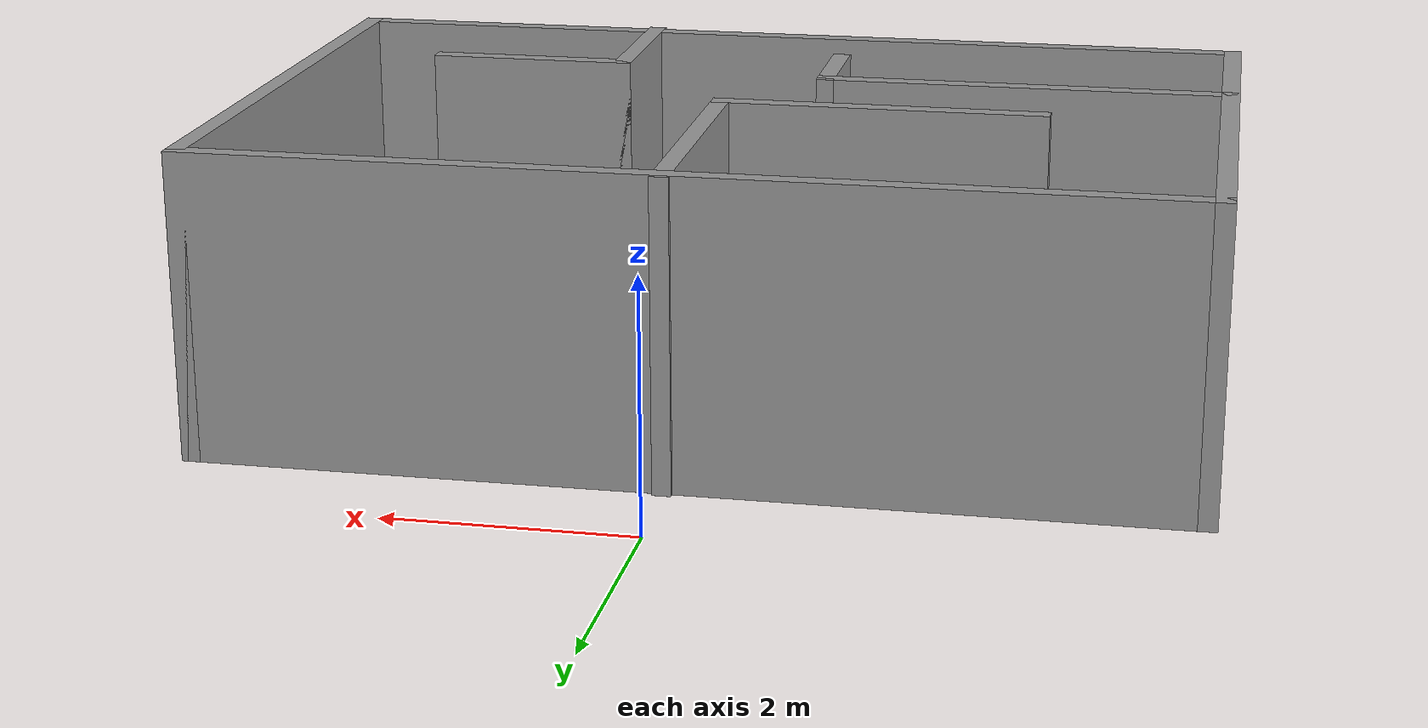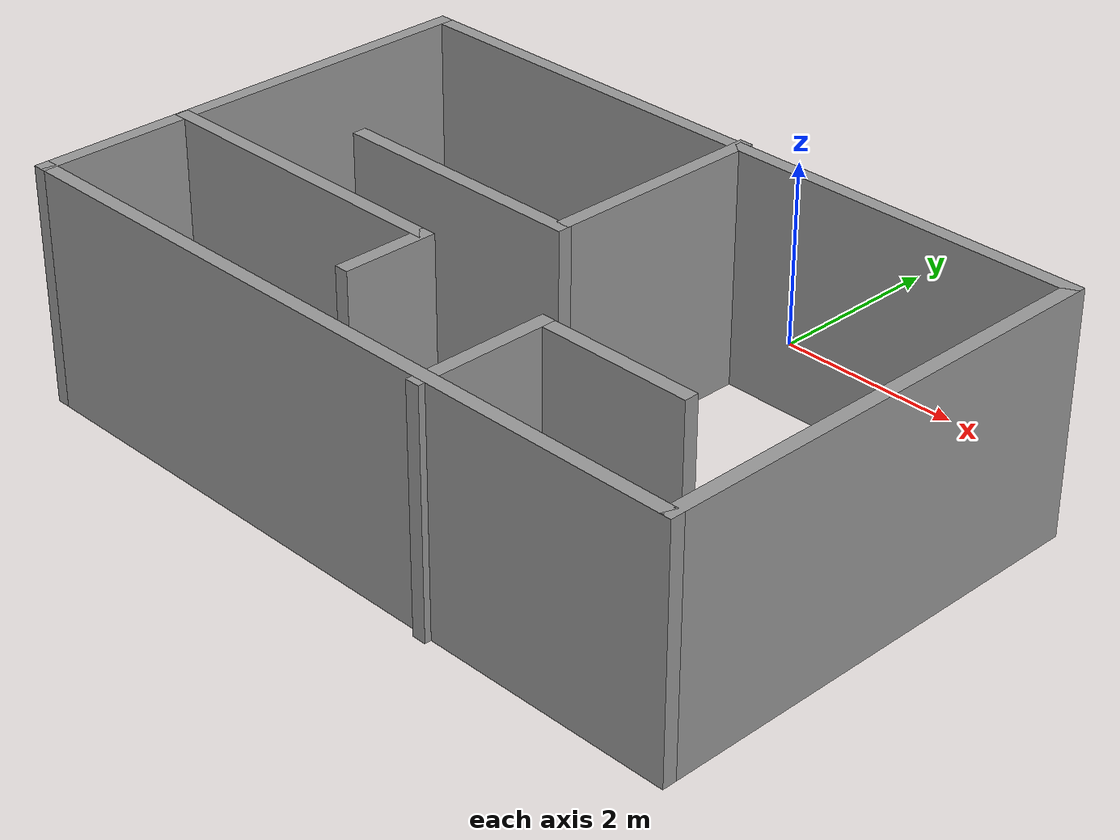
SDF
<?xml version='1.0'?>
<sdf version='1.7'>
  <model name='room'>
    <pose>-0.125 -2.9625 0 0 -0 0</pose>
    <link name='Wall_1'>
      <collision name='Wall_1_Collision'>
        <geometry>
          <box>
            <size>8 0.15 2.5</size>
          </box>
        </geometry>
        <pose>0 0 1.25 0 -0 0</pose>
      </collision>
      <visual name='Wall_1_Visual'>
        <pose>0 0 1.25 0 -0 0</pose>
        <geometry>
          <box>
            <size>8 0.15 2.5</size>
          </box>
        </geometry>
        <material>
          <script>
            <uri>file://media/materials/scripts/gazebo.material</uri>
            <name>Gazebo/Grey</name>
          </script>
          <ambient>1 1 1 1</ambient>
        </material>
        <meta>
          <layer>0</layer>
        </meta>
      </visual>
      <pose>0 2.0325 0 0 -0 0</pose>
    </link>
    <link name='Wall_10'>
      <collision name='Wall_10_Collision'>
        <geometry>
          <box>
            <size>3.5 0.15 2.5</size>
          </box>
        </geometry>
        <pose>0 0 1.25 0 -0 0</pose>
      </collision>
      <visual name='Wall_10_Visual'>
        <pose>0 0 1.25 0 -0 0</pose>
        <geometry>
          <box>
            <size>3.5 0.15 2.5</size>
          </box>
        </geometry>
        <material>
          <script>
            <uri>file://media/materials/scripts/gazebo.material</uri>
            <name>Gazebo/Grey</name>
          </script>
          <ambient>1 1 1 1</ambient>
        </material>
        <meta>
          <layer>0</layer>
        </meta>
      </visual>
      <pose>-2.24 -1.2275 0 0 -0 0</pose>
    </link>
    <link name='Wall_11'>
      <collision name='Wall_11_Collision'>
        <geometry>
          <box>
            <size>1 0.15 2.5</size>
          </box>
        </geometry>
        <pose>0 0 1.25 0 -0 0</pose>
      </collision>
      <visual name='Wall_11_Visual'>
        <pose>0 0 1.25 0 -0 0</pose>
        <geometry>
          <box>
            <size>1 0.15 2.5</size>
          </box>
        </geometry>
        <material>
          <script>
            <uri>file://media/materials/scripts/gazebo.material</uri>
            <name>Gazebo/Grey</name>
          </script>
          <ambient>1 1 1 1</ambient>
        </material>
        <meta>
          <layer>0</layer>
        </meta>
      </visual>
      <pose>-0.565 -1.6525 0 0 -0 -1.5708</pose>
    </link>
    <link name='Wall_13'>
      <collision name='Wall_13_Collision'>
        <geometry>
          <box>
            <size>1.5 0.15 2.5</size>
          </box>
        </geometry>
        <pose>0 0 1.25 0 -0 0</pose>
      </collision>
      <visual name='Wall_13_Visual'>
        <pose>0 0 1.25 0 -0 0</pose>
        <geometry>
          <box>
            <size>1.5 0.15 2.5</size>
          </box>
        </geometry>
        <material>
          <script>
            <uri>file://media/materials/scripts/gazebo.material</uri>
            <name>Gazebo/Grey</name>
          </script>
          <ambient>1 1 1 1</ambient>
        </material>
        <meta>
          <layer>0</layer>
        </meta>
      </visual>
      <pose>1.255 -2.2125 0 0 -0 1.5708</pose>
    </link>
    <link name='Wall_14'>
      <collision name='Wall_14_Collision'>
        <geometry>
          <box>
            <size>1.75 0.15 2.5</size>
          </box>
        </geometry>
        <pose>0 0 1.25 0 -0 0</pose>
      </collision>
      <visual name='Wall_14_Visual'>
        <pose>0 0 1.25 0 -0 0</pose>
        <geometry>
          <box>
            <size>1.75 0.15 2.5</size>
          </box>
        </geometry>
        <material>
          <script>
            <uri>file://media/materials/scripts/gazebo.material</uri>
            <name>Gazebo/Grey</name>
          </script>
          <ambient>1 1 1 1</ambient>
        </material>
        <meta>
          <layer>0</layer>
        </meta>
      </visual>
      <pose>2.055 -1.5375 0 0 -0 0</pose>
    </link>
    <link name='Wall_2'>
      <collision name='Wall_2_Collision'>
        <geometry>
          <box>
            <size>5 0.15 2.5</size>
          </box>
        </geometry>
        <pose>0 0 1.25 0 -0 0</pose>
      </collision>
      <visual name='Wall_2_Visual'>
        <pose>0 0 1.25 0 -0 0</pose>
        <geometry>
          <box>
            <size>5 0.15 2.5</size>
          </box>
        </geometry>
        <material>
          <script>
            <uri>file://media/materials/scripts/gazebo.material</uri>
            <name>Gazebo/Grey</name>
          </script>
          <ambient>1 1 1 1</ambient>
        </material>
        <meta>
          <layer>0</layer>
        </meta>
      </visual>
      <pose>3.925 -0.3925 0 0 -0 -1.5708</pose>
    </link>
    <link name='Wall_3'>
      <collision name='Wall_3_Collision'>
        <geometry>
          <box>
            <size>8 0.15 2.5</size>
          </box>
        </geometry>
        <pose>0 0 1.25 0 -0 0</pose>
      </collision>
      <visual name='Wall_3_Visual'>
        <pose>0 0 1.25 0 -0 0</pose>
        <geometry>
          <box>
            <size>8 0.15 2.5</size>
          </box>
        </geometry>
        <material>
          <script>
            <uri>file://media/materials/scripts/gazebo.material</uri>
            <name>Gazebo/Grey</name>
          </script>
          <ambient>1 1 1 1</ambient>
        </material>
        <meta>
          <layer>0</layer>
        </meta>
      </visual>
      <pose>0 -2.8175 0 0 -0 3.14159</pose>
    </link>
    <link name='Wall_4'>
      <collision name='Wall_4_Collision'>
        <geometry>
          <box>
            <size>5 0.15 2.5</size>
          </box>
        </geometry>
        <pose>0 0 1.25 0 -0 0</pose>
      </collision>
      <visual name='Wall_4_Visual'>
        <pose>0 0 1.25 0 -0 0</pose>
        <geometry>
          <box>
            <size>5 0.15 2.5</size>
          </box>
        </geometry>
        <material>
          <script>
            <uri>file://media/materials/scripts/gazebo.material</uri>
            <name>Gazebo/Grey</name>
          </script>
          <ambient>1 1 1 1</ambient>
        </material>
        <meta>
          <layer>0</layer>
        </meta>
      </visual>
      <pose>-3.925 -0.3925 0 0 -0 1.5708</pose>
    </link>
    <link name='Wall_7'>
      <collision name='Wall_7_Collision'>
        <geometry>
          <box>
            <size>2.5 0.15 2.5</size>
          </box>
        </geometry>
        <pose>0 0 1.25 0 -0 0</pose>
      </collision>
      <visual name='Wall_7_Visual'>
        <pose>0 0 1.25 0 -0 0</pose>
        <geometry>
          <box>
            <size>2.5 0.15 2.5</size>
          </box>
        </geometry>
        <material>
          <script>
            <uri>file://media/materials/scripts/gazebo.material</uri>
            <name>Gazebo/Grey</name>
          </script>
          <ambient>1 1 1 1</ambient>
        </material>
        <meta>
          <layer>0</layer>
        </meta>
      </visual>
      <pose>0.155 0.8975 0 0 -0 -1.5708</pose>
    </link>
    <link name='Wall_8'>
      <collision name='Wall_8_Collision'>
        <geometry>
          <box>
            <size>2.75 0.15 2.5</size>
          </box>
        </geometry>
        <pose>0 0 1.25 0 -0 0</pose>
      </collision>
      <visual name='Wall_8_Visual'>
        <pose>0 0 1.25 0 -0 0</pose>
        <geometry>
          <box>
            <size>2.75 0.15 2.5</size>
          </box>
        </geometry>
        <material>
          <script>
            <uri>file://media/materials/scripts/gazebo.material</uri>
            <name>Gazebo/Grey</name>
          </script>
          <ambient>1 1 1 1</ambient>
        </material>
        <meta>
          <layer>0</layer>
        </meta>
      </visual>
      <pose>-1.145 -0.2775 0 0 -0 3.14159</pose>
    </link>
    <static>1</static>
  </model>
</sdf>
